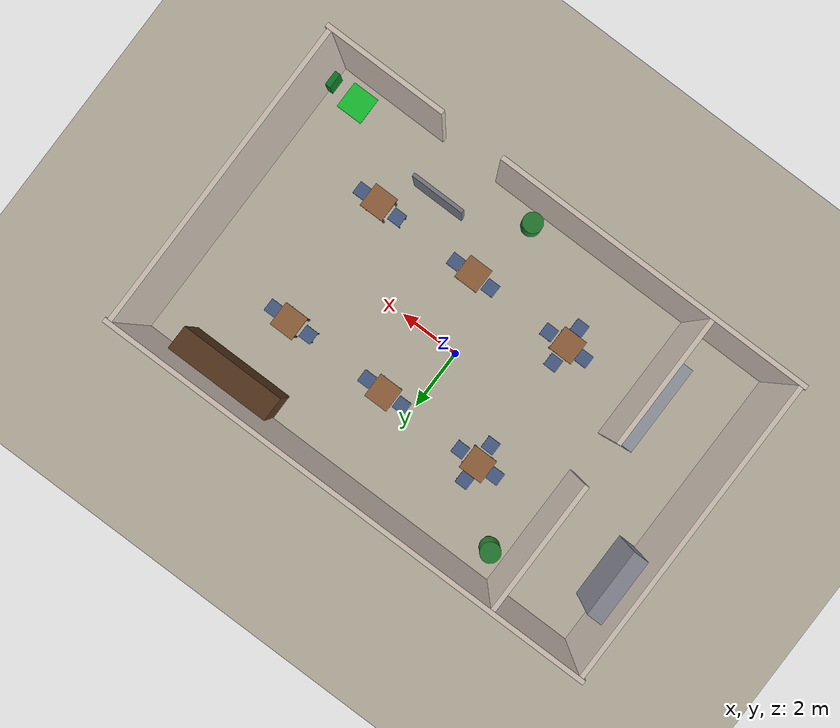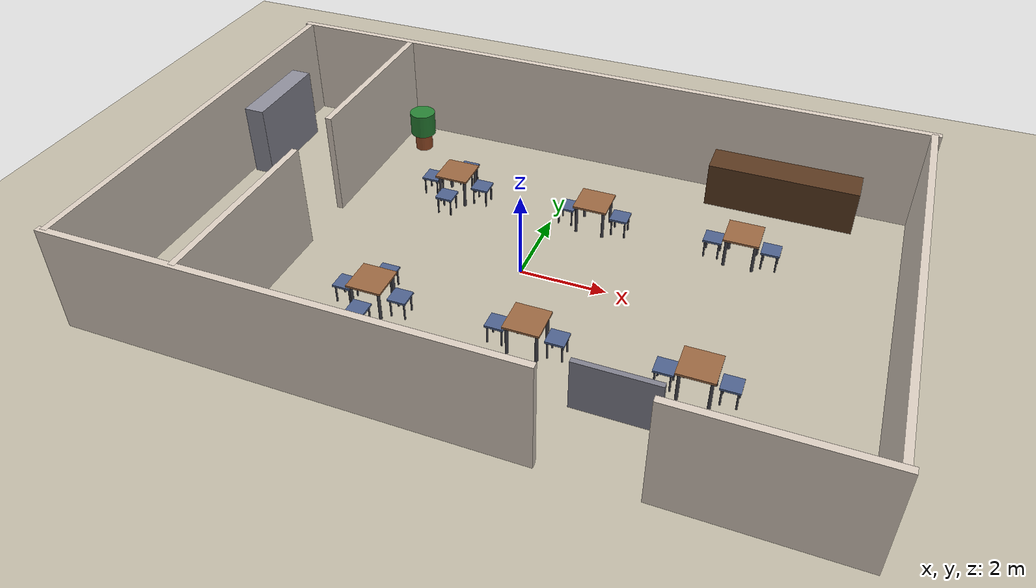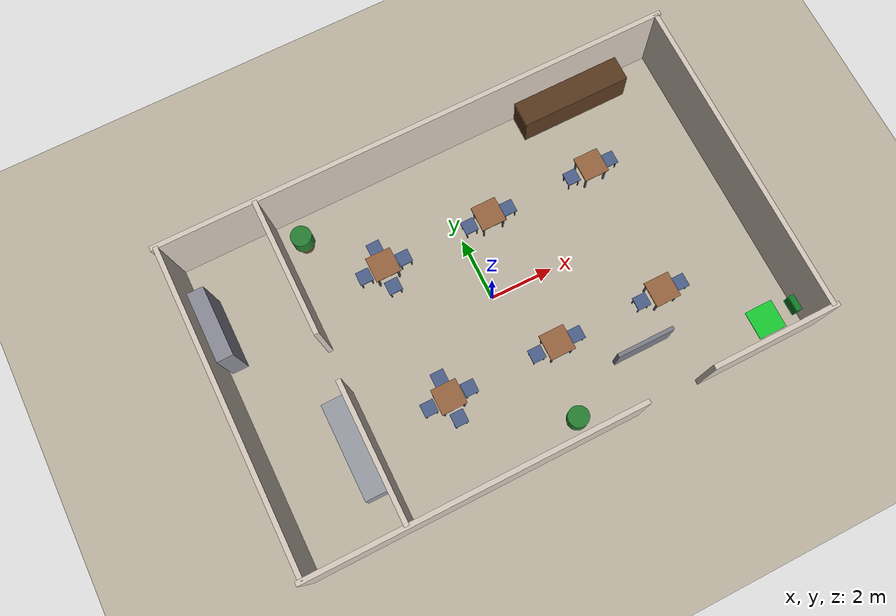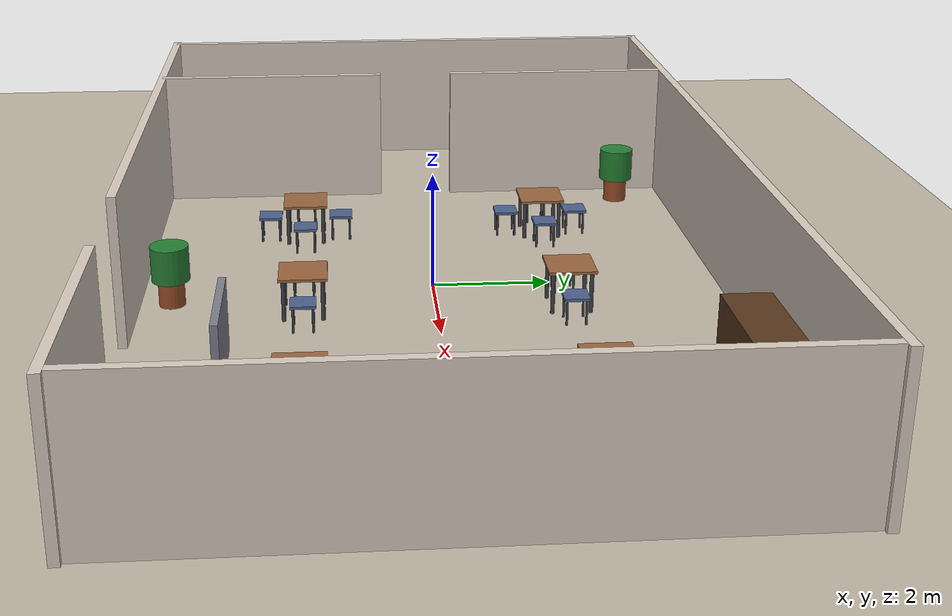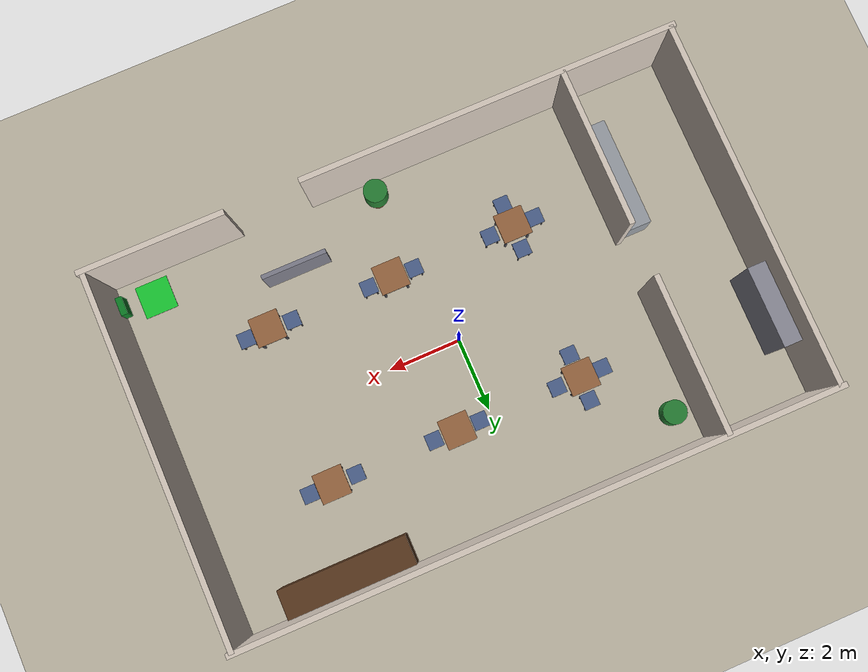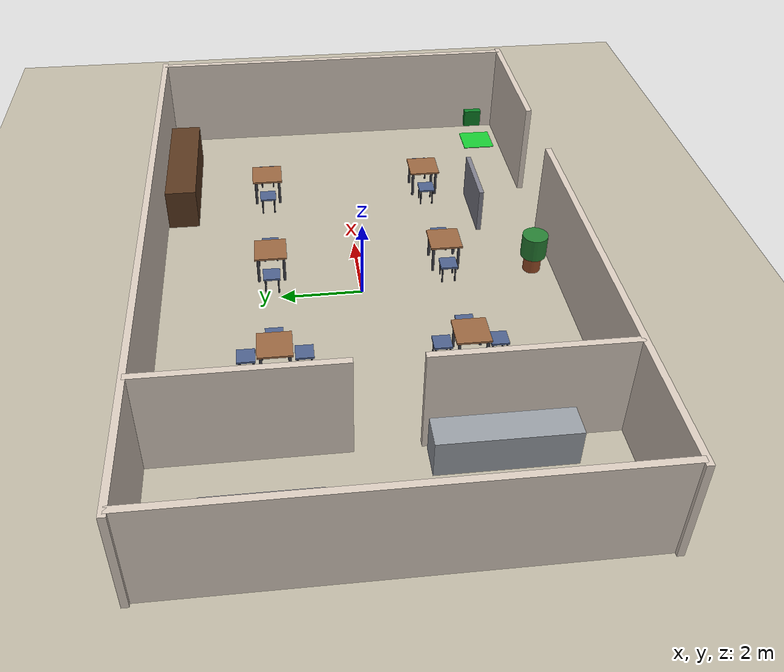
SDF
<?xml version="1.0"?>
<sdf version="1.8">
  <world name="restaurant">

    <physics name="1ms" type="ignored">
      <max_step_size>0.001</max_step_size>
      <real_time_factor>1.0</real_time_factor>
    </physics>

    <plugin filename="gz-sim-physics-system"
            name="gz::sim::systems::Physics"/>
    <plugin filename="gz-sim-user-commands-system"
            name="gz::sim::systems::UserCommands"/>
    <plugin filename="gz-sim-scene-broadcaster-system"
            name="gz::sim::systems::SceneBroadcaster"/>
    <plugin filename="gz-sim-sensors-system"
            name="gz::sim::systems::Sensors">
      <render_engine>ogre2</render_engine>
    </plugin>

    <!-- bright, evenly lit scene so the RGB-D camera sees well indoors -->
    <scene>
      <ambient>0.7 0.7 0.7 1</ambient>
      <background>0.6 0.75 0.85 1</background>
      <shadows>true</shadows>
    </scene>

    <light type="directional" name="sun">
      <cast_shadows>true</cast_shadows>
      <pose>0 0 10 0 0 0</pose>
      <diffuse>0.9 0.9 0.9 1</diffuse>
      <specular>0.2 0.2 0.2 1</specular>
      <direction>-0.3 0.2 -0.9</direction>
    </light>

    <model name="ground_plane">
      <static>true</static>
      <link name="link">
        <collision name="collision">
          <geometry>
            <plane><normal>0 0 1</normal><size>40 40</size></plane>
          </geometry>
        </collision>
        <visual name="visual">
          <geometry>
            <plane><normal>0 0 1</normal><size>40 40</size></plane>
          </geometry>
          <material>
            <ambient>0.75 0.72 0.65 1</ambient>
            <diffuse>0.75 0.72 0.65 1</diffuse>
          </material>
        </visual>
      </link>
    </model>

    <!-- building shell + kitchen divider wall (doorway 1.4 m wide) -->
    <model name="walls">
      <static>true</static>
      <link name="wall_north">
        <pose>0.0 5.0 1.25 0 0 0</pose>
        <collision name="wall_col"><pose>0 0 0 0 0 0</pose><geometry><box><size>16.3 0.15 2.5</size></box></geometry></collision>
        <visual name="wall_vis"><pose>0 0 0 0 0 0</pose><geometry><box><size>16.3 0.15 2.5</size></box></geometry><material><ambient>0.85 0.8 0.75 1</ambient><diffuse>0.85 0.8 0.75 1</diffuse></material></visual>
      </link>
      <link name="wall_south_west">
        <pose>-2.975 -5.0 1.25 0 0 0</pose>
        <collision name="wall_col"><pose>0 0 0 0 0 0</pose><geometry><box><size>10.35 0.15 2.5</size></box></geometry></collision>
        <visual name="wall_vis"><pose>0 0 0 0 0 0</pose><geometry><box><size>10.35 0.15 2.5</size></box></geometry><material><ambient>0.85 0.8 0.75 1</ambient><diffuse>0.85 0.8 0.75 1</diffuse></material></visual>
      </link>
      <link name="wall_south_east">
        <pose>6.175 -5.0 1.25 0 0 0</pose>
        <collision name="wall_col"><pose>0 0 0 0 0 0</pose><geometry><box><size>3.95 0.15 2.5</size></box></geometry></collision>
        <visual name="wall_vis"><pose>0 0 0 0 0 0</pose><geometry><box><size>3.95 0.15 2.5</size></box></geometry><material><ambient>0.85 0.8 0.75 1</ambient><diffuse>0.85 0.8 0.75 1</diffuse></material></visual>
      </link>
      <link name="wall_east">
        <pose>8.0 0.0 1.25 0 0 0</pose>
        <collision name="wall_col"><pose>0 0 0 0 0 0</pose><geometry><box><size>0.15 10.0 2.5</size></box></geometry></collision>
        <visual name="wall_vis"><pose>0 0 0 0 0 0</pose><geometry><box><size>0.15 10.0 2.5</size></box></geometry><material><ambient>0.85 0.8 0.75 1</ambient><diffuse>0.85 0.8 0.75 1</diffuse></material></visual>
      </link>
      <link name="wall_west">
        <pose>-8.0 0.0 1.25 0 0 0</pose>
        <collision name="wall_col"><pose>0 0 0 0 0 0</pose><geometry><box><size>0.15 10.0 2.5</size></box></geometry></collision>
        <visual name="wall_vis"><pose>0 0 0 0 0 0</pose><geometry><box><size>0.15 10.0 2.5</size></box></geometry><material><ambient>0.85 0.8 0.75 1</ambient><diffuse>0.85 0.8 0.75 1</diffuse></material></visual>
      </link>
      <link name="kitchen_wall_north">
        <pose>-5.0 2.85 1.25 0 0 0</pose>
        <collision name="wall_col"><pose>0 0 0 0 0 0</pose><geometry><box><size>0.15 4.3 2.5</size></box></geometry></collision>
        <visual name="wall_vis"><pose>0 0 0 0 0 0</pose><geometry><box><size>0.15 4.3 2.5</size></box></geometry><material><ambient>0.85 0.8 0.75 1</ambient><diffuse>0.85 0.8 0.75 1</diffuse></material></visual>
      </link>
      <link name="kitchen_wall_south">
        <pose>-5.0 -2.85 1.25 0 0 0</pose>
        <collision name="wall_col"><pose>0 0 0 0 0 0</pose><geometry><box><size>0.15 4.3 2.5</size></box></geometry></collision>
        <visual name="wall_vis"><pose>0 0 0 0 0 0</pose><geometry><box><size>0.15 4.3 2.5</size></box></geometry><material><ambient>0.85 0.8 0.75 1</ambient><diffuse>0.85 0.8 0.75 1</diffuse></material></visual>
      </link>
    </model>

    <!-- dining area: 6 tables on four cylinder legs each;
         tables 1 and 4 seat four, the rest seat two -->
    <model name="table_1">
      <static>true</static>
      <pose>-2.5 2.2 0 0 0 0</pose>
      <link name="table">
        <collision name="top_col"><pose>0 0 0.725 0 0 0</pose><geometry><box><size>0.8 0.8 0.05</size></box></geometry></collision>
        <visual name="top_vis"><pose>0 0 0.725 0 0 0</pose><geometry><box><size>0.8 0.8 0.05</size></box></geometry><material><ambient>0.6 0.4 0.25 1</ambient><diffuse>0.6 0.4 0.25 1</diffuse></material></visual>
        <collision name="leg_1_col"><pose>-0.32 -0.32 0.35 0 0 0</pose><geometry><cylinder><radius>0.035</radius><length>0.7</length></cylinder></geometry></collision>
        <visual name="leg_1_vis"><pose>-0.32 -0.32 0.35 0 0 0</pose><geometry><cylinder><radius>0.035</radius><length>0.7</length></cylinder></geometry><material><ambient>0.25 0.25 0.28 1</ambient><diffuse>0.25 0.25 0.28 1</diffuse></material></visual>
        <collision name="leg_2_col"><pose>-0.32 0.32 0.35 0 0 0</pose><geometry><cylinder><radius>0.035</radius><length>0.7</length></cylinder></geometry></collision>
        <visual name="leg_2_vis"><pose>-0.32 0.32 0.35 0 0 0</pose><geometry><cylinder><radius>0.035</radius><length>0.7</length></cylinder></geometry><material><ambient>0.25 0.25 0.28 1</ambient><diffuse>0.25 0.25 0.28 1</diffuse></material></visual>
        <collision name="leg_3_col"><pose>0.32 -0.32 0.35 0 0 0</pose><geometry><cylinder><radius>0.035</radius><length>0.7</length></cylinder></geometry></collision>
        <visual name="leg_3_vis"><pose>0.32 -0.32 0.35 0 0 0</pose><geometry><cylinder><radius>0.035</radius><length>0.7</length></cylinder></geometry><material><ambient>0.25 0.25 0.28 1</ambient><diffuse>0.25 0.25 0.28 1</diffuse></material></visual>
        <collision name="leg_4_col"><pose>0.32 0.32 0.35 0 0 0</pose><geometry><cylinder><radius>0.035</radius><length>0.7</length></cylinder></geometry></collision>
        <visual name="leg_4_vis"><pose>0.32 0.32 0.35 0 0 0</pose><geometry><cylinder><radius>0.035</radius><length>0.7</length></cylinder></geometry><material><ambient>0.25 0.25 0.28 1</ambient><diffuse>0.25 0.25 0.28 1</diffuse></material></visual>
      </link>
      <link name="chair_east">
        <pose>0.65 0 0 0 0 0</pose>
        <collision name="seat_col"><pose>0 0 0.45 0 0 0</pose><geometry><box><size>0.42 0.42 0.05</size></box></geometry></collision>
        <visual name="seat_vis"><pose>0 0 0.45 0 0 0</pose><geometry><box><size>0.42 0.42 0.05</size></box></geometry><material><ambient>0.3 0.38 0.55 1</ambient><diffuse>0.3 0.38 0.55 1</diffuse></material></visual>
        <collision name="leg_1_col"><pose>-0.16 -0.16 0.21 0 0 0</pose><geometry><cylinder><radius>0.02</radius><length>0.42</length></cylinder></geometry></collision>
        <visual name="leg_1_vis"><pose>-0.16 -0.16 0.21 0 0 0</pose><geometry><cylinder><radius>0.02</radius><length>0.42</length></cylinder></geometry><material><ambient>0.25 0.25 0.28 1</ambient><diffuse>0.25 0.25 0.28 1</diffuse></material></visual>
        <collision name="leg_2_col"><pose>-0.16 0.16 0.21 0 0 0</pose><geometry><cylinder><radius>0.02</radius><length>0.42</length></cylinder></geometry></collision>
        <visual name="leg_2_vis"><pose>-0.16 0.16 0.21 0 0 0</pose><geometry><cylinder><radius>0.02</radius><length>0.42</length></cylinder></geometry><material><ambient>0.25 0.25 0.28 1</ambient><diffuse>0.25 0.25 0.28 1</diffuse></material></visual>
        <collision name="leg_3_col"><pose>0.16 -0.16 0.21 0 0 0</pose><geometry><cylinder><radius>0.02</radius><length>0.42</length></cylinder></geometry></collision>
        <visual name="leg_3_vis"><pose>0.16 -0.16 0.21 0 0 0</pose><geometry><cylinder><radius>0.02</radius><length>0.42</length></cylinder></geometry><material><ambient>0.25 0.25 0.28 1</ambient><diffuse>0.25 0.25 0.28 1</diffuse></material></visual>
        <collision name="leg_4_col"><pose>0.16 0.16 0.21 0 0 0</pose><geometry><cylinder><radius>0.02</radius><length>0.42</length></cylinder></geometry></collision>
        <visual name="leg_4_vis"><pose>0.16 0.16 0.21 0 0 0</pose><geometry><cylinder><radius>0.02</radius><length>0.42</length></cylinder></geometry><material><ambient>0.25 0.25 0.28 1</ambient><diffuse>0.25 0.25 0.28 1</diffuse></material></visual>
      </link>
      <link name="chair_west">
        <pose>-0.65 0 0 0 0 0</pose>
        <collision name="seat_col"><pose>0 0 0.45 0 0 0</pose><geometry><box><size>0.42 0.42 0.05</size></box></geometry></collision>
        <visual name="seat_vis"><pose>0 0 0.45 0 0 0</pose><geometry><box><size>0.42 0.42 0.05</size></box></geometry><material><ambient>0.3 0.38 0.55 1</ambient><diffuse>0.3 0.38 0.55 1</diffuse></material></visual>
        <collision name="leg_1_col"><pose>-0.16 -0.16 0.21 0 0 0</pose><geometry><cylinder><radius>0.02</radius><length>0.42</length></cylinder></geometry></collision>
        <visual name="leg_1_vis"><pose>-0.16 -0.16 0.21 0 0 0</pose><geometry><cylinder><radius>0.02</radius><length>0.42</length></cylinder></geometry><material><ambient>0.25 0.25 0.28 1</ambient><diffuse>0.25 0.25 0.28 1</diffuse></material></visual>
        <collision name="leg_2_col"><pose>-0.16 0.16 0.21 0 0 0</pose><geometry><cylinder><radius>0.02</radius><length>0.42</length></cylinder></geometry></collision>
        <visual name="leg_2_vis"><pose>-0.16 0.16 0.21 0 0 0</pose><geometry><cylinder><radius>0.02</radius><length>0.42</length></cylinder></geometry><material><ambient>0.25 0.25 0.28 1</ambient><diffuse>0.25 0.25 0.28 1</diffuse></material></visual>
        <collision name="leg_3_col"><pose>0.16 -0.16 0.21 0 0 0</pose><geometry><cylinder><radius>0.02</radius><length>0.42</length></cylinder></geometry></collision>
        <visual name="leg_3_vis"><pose>0.16 -0.16 0.21 0 0 0</pose><geometry><cylinder><radius>0.02</radius><length>0.42</length></cylinder></geometry><material><ambient>0.25 0.25 0.28 1</ambient><diffuse>0.25 0.25 0.28 1</diffuse></material></visual>
        <collision name="leg_4_col"><pose>0.16 0.16 0.21 0 0 0</pose><geometry><cylinder><radius>0.02</radius><length>0.42</length></cylinder></geometry></collision>
        <visual name="leg_4_vis"><pose>0.16 0.16 0.21 0 0 0</pose><geometry><cylinder><radius>0.02</radius><length>0.42</length></cylinder></geometry><material><ambient>0.25 0.25 0.28 1</ambient><diffuse>0.25 0.25 0.28 1</diffuse></material></visual>
      </link>
      <link name="chair_north">
        <pose>0 0.65 0 0 0 0</pose>
        <collision name="seat_col"><pose>0 0 0.45 0 0 0</pose><geometry><box><size>0.42 0.42 0.05</size></box></geometry></collision>
        <visual name="seat_vis"><pose>0 0 0.45 0 0 0</pose><geometry><box><size>0.42 0.42 0.05</size></box></geometry><material><ambient>0.3 0.38 0.55 1</ambient><diffuse>0.3 0.38 0.55 1</diffuse></material></visual>
        <collision name="leg_1_col"><pose>-0.16 -0.16 0.21 0 0 0</pose><geometry><cylinder><radius>0.02</radius><length>0.42</length></cylinder></geometry></collision>
        <visual name="leg_1_vis"><pose>-0.16 -0.16 0.21 0 0 0</pose><geometry><cylinder><radius>0.02</radius><length>0.42</length></cylinder></geometry><material><ambient>0.25 0.25 0.28 1</ambient><diffuse>0.25 0.25 0.28 1</diffuse></material></visual>
        <collision name="leg_2_col"><pose>-0.16 0.16 0.21 0 0 0</pose><geometry><cylinder><radius>0.02</radius><length>0.42</length></cylinder></geometry></collision>
        <visual name="leg_2_vis"><pose>-0.16 0.16 0.21 0 0 0</pose><geometry><cylinder><radius>0.02</radius><length>0.42</length></cylinder></geometry><material><ambient>0.25 0.25 0.28 1</ambient><diffuse>0.25 0.25 0.28 1</diffuse></material></visual>
        <collision name="leg_3_col"><pose>0.16 -0.16 0.21 0 0 0</pose><geometry><cylinder><radius>0.02</radius><length>0.42</length></cylinder></geometry></collision>
        <visual name="leg_3_vis"><pose>0.16 -0.16 0.21 0 0 0</pose><geometry><cylinder><radius>0.02</radius><length>0.42</length></cylinder></geometry><material><ambient>0.25 0.25 0.28 1</ambient><diffuse>0.25 0.25 0.28 1</diffuse></material></visual>
        <collision name="leg_4_col"><pose>0.16 0.16 0.21 0 0 0</pose><geometry><cylinder><radius>0.02</radius><length>0.42</length></cylinder></geometry></collision>
        <visual name="leg_4_vis"><pose>0.16 0.16 0.21 0 0 0</pose><geometry><cylinder><radius>0.02</radius><length>0.42</length></cylinder></geometry><material><ambient>0.25 0.25 0.28 1</ambient><diffuse>0.25 0.25 0.28 1</diffuse></material></visual>
      </link>
      <link name="chair_south">
        <pose>0 -0.65 0 0 0 0</pose>
        <collision name="seat_col"><pose>0 0 0.45 0 0 0</pose><geometry><box><size>0.42 0.42 0.05</size></box></geometry></collision>
        <visual name="seat_vis"><pose>0 0 0.45 0 0 0</pose><geometry><box><size>0.42 0.42 0.05</size></box></geometry><material><ambient>0.3 0.38 0.55 1</ambient><diffuse>0.3 0.38 0.55 1</diffuse></material></visual>
        <collision name="leg_1_col"><pose>-0.16 -0.16 0.21 0 0 0</pose><geometry><cylinder><radius>0.02</radius><length>0.42</length></cylinder></geometry></collision>
        <visual name="leg_1_vis"><pose>-0.16 -0.16 0.21 0 0 0</pose><geometry><cylinder><radius>0.02</radius><length>0.42</length></cylinder></geometry><material><ambient>0.25 0.25 0.28 1</ambient><diffuse>0.25 0.25 0.28 1</diffuse></material></visual>
        <collision name="leg_2_col"><pose>-0.16 0.16 0.21 0 0 0</pose><geometry><cylinder><radius>0.02</radius><length>0.42</length></cylinder></geometry></collision>
        <visual name="leg_2_vis"><pose>-0.16 0.16 0.21 0 0 0</pose><geometry><cylinder><radius>0.02</radius><length>0.42</length></cylinder></geometry><material><ambient>0.25 0.25 0.28 1</ambient><diffuse>0.25 0.25 0.28 1</diffuse></material></visual>
        <collision name="leg_3_col"><pose>0.16 -0.16 0.21 0 0 0</pose><geometry><cylinder><radius>0.02</radius><length>0.42</length></cylinder></geometry></collision>
        <visual name="leg_3_vis"><pose>0.16 -0.16 0.21 0 0 0</pose><geometry><cylinder><radius>0.02</radius><length>0.42</length></cylinder></geometry><material><ambient>0.25 0.25 0.28 1</ambient><diffuse>0.25 0.25 0.28 1</diffuse></material></visual>
        <collision name="leg_4_col"><pose>0.16 0.16 0.21 0 0 0</pose><geometry><cylinder><radius>0.02</radius><length>0.42</length></cylinder></geometry></collision>
        <visual name="leg_4_vis"><pose>0.16 0.16 0.21 0 0 0</pose><geometry><cylinder><radius>0.02</radius><length>0.42</length></cylinder></geometry><material><ambient>0.25 0.25 0.28 1</ambient><diffuse>0.25 0.25 0.28 1</diffuse></material></visual>
      </link>
    </model>

    <model name="table_2">
      <static>true</static>
      <pose>1.0 2.2 0 0 0 0</pose>
      <link name="table">
        <collision name="top_col"><pose>0 0 0.725 0 0 0</pose><geometry><box><size>0.8 0.8 0.05</size></box></geometry></collision>
        <visual name="top_vis"><pose>0 0 0.725 0 0 0</pose><geometry><box><size>0.8 0.8 0.05</size></box></geometry><material><ambient>0.6 0.4 0.25 1</ambient><diffuse>0.6 0.4 0.25 1</diffuse></material></visual>
        <collision name="leg_1_col"><pose>-0.32 -0.32 0.35 0 0 0</pose><geometry><cylinder><radius>0.035</radius><length>0.7</length></cylinder></geometry></collision>
        <visual name="leg_1_vis"><pose>-0.32 -0.32 0.35 0 0 0</pose><geometry><cylinder><radius>0.035</radius><length>0.7</length></cylinder></geometry><material><ambient>0.25 0.25 0.28 1</ambient><diffuse>0.25 0.25 0.28 1</diffuse></material></visual>
        <collision name="leg_2_col"><pose>-0.32 0.32 0.35 0 0 0</pose><geometry><cylinder><radius>0.035</radius><length>0.7</length></cylinder></geometry></collision>
        <visual name="leg_2_vis"><pose>-0.32 0.32 0.35 0 0 0</pose><geometry><cylinder><radius>0.035</radius><length>0.7</length></cylinder></geometry><material><ambient>0.25 0.25 0.28 1</ambient><diffuse>0.25 0.25 0.28 1</diffuse></material></visual>
        <collision name="leg_3_col"><pose>0.32 -0.32 0.35 0 0 0</pose><geometry><cylinder><radius>0.035</radius><length>0.7</length></cylinder></geometry></collision>
        <visual name="leg_3_vis"><pose>0.32 -0.32 0.35 0 0 0</pose><geometry><cylinder><radius>0.035</radius><length>0.7</length></cylinder></geometry><material><ambient>0.25 0.25 0.28 1</ambient><diffuse>0.25 0.25 0.28 1</diffuse></material></visual>
        <collision name="leg_4_col"><pose>0.32 0.32 0.35 0 0 0</pose><geometry><cylinder><radius>0.035</radius><length>0.7</length></cylinder></geometry></collision>
        <visual name="leg_4_vis"><pose>0.32 0.32 0.35 0 0 0</pose><geometry><cylinder><radius>0.035</radius><length>0.7</length></cylinder></geometry><material><ambient>0.25 0.25 0.28 1</ambient><diffuse>0.25 0.25 0.28 1</diffuse></material></visual>
      </link>
      <link name="chair_east">
        <pose>0.65 0 0 0 0 0</pose>
        <collision name="seat_col"><pose>0 0 0.45 0 0 0</pose><geometry><box><size>0.42 0.42 0.05</size></box></geometry></collision>
        <visual name="seat_vis"><pose>0 0 0.45 0 0 0</pose><geometry><box><size>0.42 0.42 0.05</size></box></geometry><material><ambient>0.3 0.38 0.55 1</ambient><diffuse>0.3 0.38 0.55 1</diffuse></material></visual>
        <collision name="leg_1_col"><pose>-0.16 -0.16 0.21 0 0 0</pose><geometry><cylinder><radius>0.02</radius><length>0.42</length></cylinder></geometry></collision>
        <visual name="leg_1_vis"><pose>-0.16 -0.16 0.21 0 0 0</pose><geometry><cylinder><radius>0.02</radius><length>0.42</length></cylinder></geometry><material><ambient>0.25 0.25 0.28 1</ambient><diffuse>0.25 0.25 0.28 1</diffuse></material></visual>
        <collision name="leg_2_col"><pose>-0.16 0.16 0.21 0 0 0</pose><geometry><cylinder><radius>0.02</radius><length>0.42</length></cylinder></geometry></collision>
        <visual name="leg_2_vis"><pose>-0.16 0.16 0.21 0 0 0</pose><geometry><cylinder><radius>0.02</radius><length>0.42</length></cylinder></geometry><material><ambient>0.25 0.25 0.28 1</ambient><diffuse>0.25 0.25 0.28 1</diffuse></material></visual>
        <collision name="leg_3_col"><pose>0.16 -0.16 0.21 0 0 0</pose><geometry><cylinder><radius>0.02</radius><length>0.42</length></cylinder></geometry></collision>
        <visual name="leg_3_vis"><pose>0.16 -0.16 0.21 0 0 0</pose><geometry><cylinder><radius>0.02</radius><length>0.42</length></cylinder></geometry><material><ambient>0.25 0.25 0.28 1</ambient><diffuse>0.25 0.25 0.28 1</diffuse></material></visual>
        <collision name="leg_4_col"><pose>0.16 0.16 0.21 0 0 0</pose><geometry><cylinder><radius>0.02</radius><length>0.42</length></cylinder></geometry></collision>
        <visual name="leg_4_vis"><pose>0.16 0.16 0.21 0 0 0</pose><geometry><cylinder><radius>0.02</radius><length>0.42</length></cylinder></geometry><material><ambient>0.25 0.25 0.28 1</ambient><diffuse>0.25 0.25 0.28 1</diffuse></material></visual>
      </link>
      <link name="chair_west">
        <pose>-0.65 0 0 0 0 0</pose>
        <collision name="seat_col"><pose>0 0 0.45 0 0 0</pose><geometry><box><size>0.42 0.42 0.05</size></box></geometry></collision>
        <visual name="seat_vis"><pose>0 0 0.45 0 0 0</pose><geometry><box><size>0.42 0.42 0.05</size></box></geometry><material><ambient>0.3 0.38 0.55 1</ambient><diffuse>0.3 0.38 0.55 1</diffuse></material></visual>
        <collision name="leg_1_col"><pose>-0.16 -0.16 0.21 0 0 0</pose><geometry><cylinder><radius>0.02</radius><length>0.42</length></cylinder></geometry></collision>
        <visual name="leg_1_vis"><pose>-0.16 -0.16 0.21 0 0 0</pose><geometry><cylinder><radius>0.02</radius><length>0.42</length></cylinder></geometry><material><ambient>0.25 0.25 0.28 1</ambient><diffuse>0.25 0.25 0.28 1</diffuse></material></visual>
        <collision name="leg_2_col"><pose>-0.16 0.16 0.21 0 0 0</pose><geometry><cylinder><radius>0.02</radius><length>0.42</length></cylinder></geometry></collision>
        <visual name="leg_2_vis"><pose>-0.16 0.16 0.21 0 0 0</pose><geometry><cylinder><radius>0.02</radius><length>0.42</length></cylinder></geometry><material><ambient>0.25 0.25 0.28 1</ambient><diffuse>0.25 0.25 0.28 1</diffuse></material></visual>
        <collision name="leg_3_col"><pose>0.16 -0.16 0.21 0 0 0</pose><geometry><cylinder><radius>0.02</radius><length>0.42</length></cylinder></geometry></collision>
        <visual name="leg_3_vis"><pose>0.16 -0.16 0.21 0 0 0</pose><geometry><cylinder><radius>0.02</radius><length>0.42</length></cylinder></geometry><material><ambient>0.25 0.25 0.28 1</ambient><diffuse>0.25 0.25 0.28 1</diffuse></material></visual>
        <collision name="leg_4_col"><pose>0.16 0.16 0.21 0 0 0</pose><geometry><cylinder><radius>0.02</radius><length>0.42</length></cylinder></geometry></collision>
        <visual name="leg_4_vis"><pose>0.16 0.16 0.21 0 0 0</pose><geometry><cylinder><radius>0.02</radius><length>0.42</length></cylinder></geometry><material><ambient>0.25 0.25 0.28 1</ambient><diffuse>0.25 0.25 0.28 1</diffuse></material></visual>
      </link>
    </model>

    <model name="table_3">
      <static>true</static>
      <pose>4.5 2.2 0 0 0 0</pose>
      <link name="table">
        <collision name="top_col"><pose>0 0 0.725 0 0 0</pose><geometry><box><size>0.8 0.8 0.05</size></box></geometry></collision>
        <visual name="top_vis"><pose>0 0 0.725 0 0 0</pose><geometry><box><size>0.8 0.8 0.05</size></box></geometry><material><ambient>0.6 0.4 0.25 1</ambient><diffuse>0.6 0.4 0.25 1</diffuse></material></visual>
        <collision name="leg_1_col"><pose>-0.32 -0.32 0.35 0 0 0</pose><geometry><cylinder><radius>0.035</radius><length>0.7</length></cylinder></geometry></collision>
        <visual name="leg_1_vis"><pose>-0.32 -0.32 0.35 0 0 0</pose><geometry><cylinder><radius>0.035</radius><length>0.7</length></cylinder></geometry><material><ambient>0.25 0.25 0.28 1</ambient><diffuse>0.25 0.25 0.28 1</diffuse></material></visual>
        <collision name="leg_2_col"><pose>-0.32 0.32 0.35 0 0 0</pose><geometry><cylinder><radius>0.035</radius><length>0.7</length></cylinder></geometry></collision>
        <visual name="leg_2_vis"><pose>-0.32 0.32 0.35 0 0 0</pose><geometry><cylinder><radius>0.035</radius><length>0.7</length></cylinder></geometry><material><ambient>0.25 0.25 0.28 1</ambient><diffuse>0.25 0.25 0.28 1</diffuse></material></visual>
        <collision name="leg_3_col"><pose>0.32 -0.32 0.35 0 0 0</pose><geometry><cylinder><radius>0.035</radius><length>0.7</length></cylinder></geometry></collision>
        <visual name="leg_3_vis"><pose>0.32 -0.32 0.35 0 0 0</pose><geometry><cylinder><radius>0.035</radius><length>0.7</length></cylinder></geometry><material><ambient>0.25 0.25 0.28 1</ambient><diffuse>0.25 0.25 0.28 1</diffuse></material></visual>
        <collision name="leg_4_col"><pose>0.32 0.32 0.35 0 0 0</pose><geometry><cylinder><radius>0.035</radius><length>0.7</length></cylinder></geometry></collision>
        <visual name="leg_4_vis"><pose>0.32 0.32 0.35 0 0 0</pose><geometry><cylinder><radius>0.035</radius><length>0.7</length></cylinder></geometry><material><ambient>0.25 0.25 0.28 1</ambient><diffuse>0.25 0.25 0.28 1</diffuse></material></visual>
      </link>
      <link name="chair_east">
        <pose>0.65 0 0 0 0 0</pose>
        <collision name="seat_col"><pose>0 0 0.45 0 0 0</pose><geometry><box><size>0.42 0.42 0.05</size></box></geometry></collision>
        <visual name="seat_vis"><pose>0 0 0.45 0 0 0</pose><geometry><box><size>0.42 0.42 0.05</size></box></geometry><material><ambient>0.3 0.38 0.55 1</ambient><diffuse>0.3 0.38 0.55 1</diffuse></material></visual>
        <collision name="leg_1_col"><pose>-0.16 -0.16 0.21 0 0 0</pose><geometry><cylinder><radius>0.02</radius><length>0.42</length></cylinder></geometry></collision>
        <visual name="leg_1_vis"><pose>-0.16 -0.16 0.21 0 0 0</pose><geometry><cylinder><radius>0.02</radius><length>0.42</length></cylinder></geometry><material><ambient>0.25 0.25 0.28 1</ambient><diffuse>0.25 0.25 0.28 1</diffuse></material></visual>
        <collision name="leg_2_col"><pose>-0.16 0.16 0.21 0 0 0</pose><geometry><cylinder><radius>0.02</radius><length>0.42</length></cylinder></geometry></collision>
        <visual name="leg_2_vis"><pose>-0.16 0.16 0.21 0 0 0</pose><geometry><cylinder><radius>0.02</radius><length>0.42</length></cylinder></geometry><material><ambient>0.25 0.25 0.28 1</ambient><diffuse>0.25 0.25 0.28 1</diffuse></material></visual>
        <collision name="leg_3_col"><pose>0.16 -0.16 0.21 0 0 0</pose><geometry><cylinder><radius>0.02</radius><length>0.42</length></cylinder></geometry></collision>
        <visual name="leg_3_vis"><pose>0.16 -0.16 0.21 0 0 0</pose><geometry><cylinder><radius>0.02</radius><length>0.42</length></cylinder></geometry><material><ambient>0.25 0.25 0.28 1</ambient><diffuse>0.25 0.25 0.28 1</diffuse></material></visual>
        <collision name="leg_4_col"><pose>0.16 0.16 0.21 0 0 0</pose><geometry><cylinder><radius>0.02</radius><length>0.42</length></cylinder></geometry></collision>
        <visual name="leg_4_vis"><pose>0.16 0.16 0.21 0 0 0</pose><geometry><cylinder><radius>0.02</radius><length>0.42</length></cylinder></geometry><material><ambient>0.25 0.25 0.28 1</ambient><diffuse>0.25 0.25 0.28 1</diffuse></material></visual>
      </link>
      <link name="chair_west">
        <pose>-0.65 0 0 0 0 0</pose>
        <collision name="seat_col"><pose>0 0 0.45 0 0 0</pose><geometry><box><size>0.42 0.42 0.05</size></box></geometry></collision>
        <visual name="seat_vis"><pose>0 0 0.45 0 0 0</pose><geometry><box><size>0.42 0.42 0.05</size></box></geometry><material><ambient>0.3 0.38 0.55 1</ambient><diffuse>0.3 0.38 0.55 1</diffuse></material></visual>
        <collision name="leg_1_col"><pose>-0.16 -0.16 0.21 0 0 0</pose><geometry><cylinder><radius>0.02</radius><length>0.42</length></cylinder></geometry></collision>
        <visual name="leg_1_vis"><pose>-0.16 -0.16 0.21 0 0 0</pose><geometry><cylinder><radius>0.02</radius><length>0.42</length></cylinder></geometry><material><ambient>0.25 0.25 0.28 1</ambient><diffuse>0.25 0.25 0.28 1</diffuse></material></visual>
        <collision name="leg_2_col"><pose>-0.16 0.16 0.21 0 0 0</pose><geometry><cylinder><radius>0.02</radius><length>0.42</length></cylinder></geometry></collision>
        <visual name="leg_2_vis"><pose>-0.16 0.16 0.21 0 0 0</pose><geometry><cylinder><radius>0.02</radius><length>0.42</length></cylinder></geometry><material><ambient>0.25 0.25 0.28 1</ambient><diffuse>0.25 0.25 0.28 1</diffuse></material></visual>
        <collision name="leg_3_col"><pose>0.16 -0.16 0.21 0 0 0</pose><geometry><cylinder><radius>0.02</radius><length>0.42</length></cylinder></geometry></collision>
        <visual name="leg_3_vis"><pose>0.16 -0.16 0.21 0 0 0</pose><geometry><cylinder><radius>0.02</radius><length>0.42</length></cylinder></geometry><material><ambient>0.25 0.25 0.28 1</ambient><diffuse>0.25 0.25 0.28 1</diffuse></material></visual>
        <collision name="leg_4_col"><pose>0.16 0.16 0.21 0 0 0</pose><geometry><cylinder><radius>0.02</radius><length>0.42</length></cylinder></geometry></collision>
        <visual name="leg_4_vis"><pose>0.16 0.16 0.21 0 0 0</pose><geometry><cylinder><radius>0.02</radius><length>0.42</length></cylinder></geometry><material><ambient>0.25 0.25 0.28 1</ambient><diffuse>0.25 0.25 0.28 1</diffuse></material></visual>
      </link>
    </model>

    <model name="table_4">
      <static>true</static>
      <pose>-2.5 -2.2 0 0 0 0</pose>
      <link name="table">
        <collision name="top_col"><pose>0 0 0.725 0 0 0</pose><geometry><box><size>0.8 0.8 0.05</size></box></geometry></collision>
        <visual name="top_vis"><pose>0 0 0.725 0 0 0</pose><geometry><box><size>0.8 0.8 0.05</size></box></geometry><material><ambient>0.6 0.4 0.25 1</ambient><diffuse>0.6 0.4 0.25 1</diffuse></material></visual>
        <collision name="leg_1_col"><pose>-0.32 -0.32 0.35 0 0 0</pose><geometry><cylinder><radius>0.035</radius><length>0.7</length></cylinder></geometry></collision>
        <visual name="leg_1_vis"><pose>-0.32 -0.32 0.35 0 0 0</pose><geometry><cylinder><radius>0.035</radius><length>0.7</length></cylinder></geometry><material><ambient>0.25 0.25 0.28 1</ambient><diffuse>0.25 0.25 0.28 1</diffuse></material></visual>
        <collision name="leg_2_col"><pose>-0.32 0.32 0.35 0 0 0</pose><geometry><cylinder><radius>0.035</radius><length>0.7</length></cylinder></geometry></collision>
        <visual name="leg_2_vis"><pose>-0.32 0.32 0.35 0 0 0</pose><geometry><cylinder><radius>0.035</radius><length>0.7</length></cylinder></geometry><material><ambient>0.25 0.25 0.28 1</ambient><diffuse>0.25 0.25 0.28 1</diffuse></material></visual>
        <collision name="leg_3_col"><pose>0.32 -0.32 0.35 0 0 0</pose><geometry><cylinder><radius>0.035</radius><length>0.7</length></cylinder></geometry></collision>
        <visual name="leg_3_vis"><pose>0.32 -0.32 0.35 0 0 0</pose><geometry><cylinder><radius>0.035</radius><length>0.7</length></cylinder></geometry><material><ambient>0.25 0.25 0.28 1</ambient><diffuse>0.25 0.25 0.28 1</diffuse></material></visual>
        <collision name="leg_4_col"><pose>0.32 0.32 0.35 0 0 0</pose><geometry><cylinder><radius>0.035</radius><length>0.7</length></cylinder></geometry></collision>
        <visual name="leg_4_vis"><pose>0.32 0.32 0.35 0 0 0</pose><geometry><cylinder><radius>0.035</radius><length>0.7</length></cylinder></geometry><material><ambient>0.25 0.25 0.28 1</ambient><diffuse>0.25 0.25 0.28 1</diffuse></material></visual>
      </link>
      <link name="chair_east">
        <pose>0.65 0 0 0 0 0</pose>
        <collision name="seat_col"><pose>0 0 0.45 0 0 0</pose><geometry><box><size>0.42 0.42 0.05</size></box></geometry></collision>
        <visual name="seat_vis"><pose>0 0 0.45 0 0 0</pose><geometry><box><size>0.42 0.42 0.05</size></box></geometry><material><ambient>0.3 0.38 0.55 1</ambient><diffuse>0.3 0.38 0.55 1</diffuse></material></visual>
        <collision name="leg_1_col"><pose>-0.16 -0.16 0.21 0 0 0</pose><geometry><cylinder><radius>0.02</radius><length>0.42</length></cylinder></geometry></collision>
        <visual name="leg_1_vis"><pose>-0.16 -0.16 0.21 0 0 0</pose><geometry><cylinder><radius>0.02</radius><length>0.42</length></cylinder></geometry><material><ambient>0.25 0.25 0.28 1</ambient><diffuse>0.25 0.25 0.28 1</diffuse></material></visual>
        <collision name="leg_2_col"><pose>-0.16 0.16 0.21 0 0 0</pose><geometry><cylinder><radius>0.02</radius><length>0.42</length></cylinder></geometry></collision>
        <visual name="leg_2_vis"><pose>-0.16 0.16 0.21 0 0 0</pose><geometry><cylinder><radius>0.02</radius><length>0.42</length></cylinder></geometry><material><ambient>0.25 0.25 0.28 1</ambient><diffuse>0.25 0.25 0.28 1</diffuse></material></visual>
        <collision name="leg_3_col"><pose>0.16 -0.16 0.21 0 0 0</pose><geometry><cylinder><radius>0.02</radius><length>0.42</length></cylinder></geometry></collision>
        <visual name="leg_3_vis"><pose>0.16 -0.16 0.21 0 0 0</pose><geometry><cylinder><radius>0.02</radius><length>0.42</length></cylinder></geometry><material><ambient>0.25 0.25 0.28 1</ambient><diffuse>0.25 0.25 0.28 1</diffuse></material></visual>
        <collision name="leg_4_col"><pose>0.16 0.16 0.21 0 0 0</pose><geometry><cylinder><radius>0.02</radius><length>0.42</length></cylinder></geometry></collision>
        <visual name="leg_4_vis"><pose>0.16 0.16 0.21 0 0 0</pose><geometry><cylinder><radius>0.02</radius><length>0.42</length></cylinder></geometry><material><ambient>0.25 0.25 0.28 1</ambient><diffuse>0.25 0.25 0.28 1</diffuse></material></visual>
      </link>
      <link name="chair_west">
        <pose>-0.65 0 0 0 0 0</pose>
        <collision name="seat_col"><pose>0 0 0.45 0 0 0</pose><geometry><box><size>0.42 0.42 0.05</size></box></geometry></collision>
        <visual name="seat_vis"><pose>0 0 0.45 0 0 0</pose><geometry><box><size>0.42 0.42 0.05</size></box></geometry><material><ambient>0.3 0.38 0.55 1</ambient><diffuse>0.3 0.38 0.55 1</diffuse></material></visual>
        <collision name="leg_1_col"><pose>-0.16 -0.16 0.21 0 0 0</pose><geometry><cylinder><radius>0.02</radius><length>0.42</length></cylinder></geometry></collision>
        <visual name="leg_1_vis"><pose>-0.16 -0.16 0.21 0 0 0</pose><geometry><cylinder><radius>0.02</radius><length>0.42</length></cylinder></geometry><material><ambient>0.25 0.25 0.28 1</ambient><diffuse>0.25 0.25 0.28 1</diffuse></material></visual>
        <collision name="leg_2_col"><pose>-0.16 0.16 0.21 0 0 0</pose><geometry><cylinder><radius>0.02</radius><length>0.42</length></cylinder></geometry></collision>
        <visual name="leg_2_vis"><pose>-0.16 0.16 0.21 0 0 0</pose><geometry><cylinder><radius>0.02</radius><length>0.42</length></cylinder></geometry><material><ambient>0.25 0.25 0.28 1</ambient><diffuse>0.25 0.25 0.28 1</diffuse></material></visual>
        <collision name="leg_3_col"><pose>0.16 -0.16 0.21 0 0 0</pose><geometry><cylinder><radius>0.02</radius><length>0.42</length></cylinder></geometry></collision>
        <visual name="leg_3_vis"><pose>0.16 -0.16 0.21 0 0 0</pose><geometry><cylinder><radius>0.02</radius><length>0.42</length></cylinder></geometry><material><ambient>0.25 0.25 0.28 1</ambient><diffuse>0.25 0.25 0.28 1</diffuse></material></visual>
        <collision name="leg_4_col"><pose>0.16 0.16 0.21 0 0 0</pose><geometry><cylinder><radius>0.02</radius><length>0.42</length></cylinder></geometry></collision>
        <visual name="leg_4_vis"><pose>0.16 0.16 0.21 0 0 0</pose><geometry><cylinder><radius>0.02</radius><length>0.42</length></cylinder></geometry><material><ambient>0.25 0.25 0.28 1</ambient><diffuse>0.25 0.25 0.28 1</diffuse></material></visual>
      </link>
      <link name="chair_north">
        <pose>0 0.65 0 0 0 0</pose>
        <collision name="seat_col"><pose>0 0 0.45 0 0 0</pose><geometry><box><size>0.42 0.42 0.05</size></box></geometry></collision>
        <visual name="seat_vis"><pose>0 0 0.45 0 0 0</pose><geometry><box><size>0.42 0.42 0.05</size></box></geometry><material><ambient>0.3 0.38 0.55 1</ambient><diffuse>0.3 0.38 0.55 1</diffuse></material></visual>
        <collision name="leg_1_col"><pose>-0.16 -0.16 0.21 0 0 0</pose><geometry><cylinder><radius>0.02</radius><length>0.42</length></cylinder></geometry></collision>
        <visual name="leg_1_vis"><pose>-0.16 -0.16 0.21 0 0 0</pose><geometry><cylinder><radius>0.02</radius><length>0.42</length></cylinder></geometry><material><ambient>0.25 0.25 0.28 1</ambient><diffuse>0.25 0.25 0.28 1</diffuse></material></visual>
        <collision name="leg_2_col"><pose>-0.16 0.16 0.21 0 0 0</pose><geometry><cylinder><radius>0.02</radius><length>0.42</length></cylinder></geometry></collision>
        <visual name="leg_2_vis"><pose>-0.16 0.16 0.21 0 0 0</pose><geometry><cylinder><radius>0.02</radius><length>0.42</length></cylinder></geometry><material><ambient>0.25 0.25 0.28 1</ambient><diffuse>0.25 0.25 0.28 1</diffuse></material></visual>
        <collision name="leg_3_col"><pose>0.16 -0.16 0.21 0 0 0</pose><geometry><cylinder><radius>0.02</radius><length>0.42</length></cylinder></geometry></collision>
        <visual name="leg_3_vis"><pose>0.16 -0.16 0.21 0 0 0</pose><geometry><cylinder><radius>0.02</radius><length>0.42</length></cylinder></geometry><material><ambient>0.25 0.25 0.28 1</ambient><diffuse>0.25 0.25 0.28 1</diffuse></material></visual>
        <collision name="leg_4_col"><pose>0.16 0.16 0.21 0 0 0</pose><geometry><cylinder><radius>0.02</radius><length>0.42</length></cylinder></geometry></collision>
        <visual name="leg_4_vis"><pose>0.16 0.16 0.21 0 0 0</pose><geometry><cylinder><radius>0.02</radius><length>0.42</length></cylinder></geometry><material><ambient>0.25 0.25 0.28 1</ambient><diffuse>0.25 0.25 0.28 1</diffuse></material></visual>
      </link>
      <link name="chair_south">
        <pose>0 -0.65 0 0 0 0</pose>
        <collision name="seat_col"><pose>0 0 0.45 0 0 0</pose><geometry><box><size>0.42 0.42 0.05</size></box></geometry></collision>
        <visual name="seat_vis"><pose>0 0 0.45 0 0 0</pose><geometry><box><size>0.42 0.42 0.05</size></box></geometry><material><ambient>0.3 0.38 0.55 1</ambient><diffuse>0.3 0.38 0.55 1</diffuse></material></visual>
        <collision name="leg_1_col"><pose>-0.16 -0.16 0.21 0 0 0</pose><geometry><cylinder><radius>0.02</radius><length>0.42</length></cylinder></geometry></collision>
        <visual name="leg_1_vis"><pose>-0.16 -0.16 0.21 0 0 0</pose><geometry><cylinder><radius>0.02</radius><length>0.42</length></cylinder></geometry><material><ambient>0.25 0.25 0.28 1</ambient><diffuse>0.25 0.25 0.28 1</diffuse></material></visual>
        <collision name="leg_2_col"><pose>-0.16 0.16 0.21 0 0 0</pose><geometry><cylinder><radius>0.02</radius><length>0.42</length></cylinder></geometry></collision>
        <visual name="leg_2_vis"><pose>-0.16 0.16 0.21 0 0 0</pose><geometry><cylinder><radius>0.02</radius><length>0.42</length></cylinder></geometry><material><ambient>0.25 0.25 0.28 1</ambient><diffuse>0.25 0.25 0.28 1</diffuse></material></visual>
        <collision name="leg_3_col"><pose>0.16 -0.16 0.21 0 0 0</pose><geometry><cylinder><radius>0.02</radius><length>0.42</length></cylinder></geometry></collision>
        <visual name="leg_3_vis"><pose>0.16 -0.16 0.21 0 0 0</pose><geometry><cylinder><radius>0.02</radius><length>0.42</length></cylinder></geometry><material><ambient>0.25 0.25 0.28 1</ambient><diffuse>0.25 0.25 0.28 1</diffuse></material></visual>
        <collision name="leg_4_col"><pose>0.16 0.16 0.21 0 0 0</pose><geometry><cylinder><radius>0.02</radius><length>0.42</length></cylinder></geometry></collision>
        <visual name="leg_4_vis"><pose>0.16 0.16 0.21 0 0 0</pose><geometry><cylinder><radius>0.02</radius><length>0.42</length></cylinder></geometry><material><ambient>0.25 0.25 0.28 1</ambient><diffuse>0.25 0.25 0.28 1</diffuse></material></visual>
      </link>
    </model>

    <model name="table_5">
      <static>true</static>
      <pose>1.0 -2.2 0 0 0 0</pose>
      <link name="table">
        <collision name="top_col"><pose>0 0 0.725 0 0 0</pose><geometry><box><size>0.8 0.8 0.05</size></box></geometry></collision>
        <visual name="top_vis"><pose>0 0 0.725 0 0 0</pose><geometry><box><size>0.8 0.8 0.05</size></box></geometry><material><ambient>0.6 0.4 0.25 1</ambient><diffuse>0.6 0.4 0.25 1</diffuse></material></visual>
        <collision name="leg_1_col"><pose>-0.32 -0.32 0.35 0 0 0</pose><geometry><cylinder><radius>0.035</radius><length>0.7</length></cylinder></geometry></collision>
        <visual name="leg_1_vis"><pose>-0.32 -0.32 0.35 0 0 0</pose><geometry><cylinder><radius>0.035</radius><length>0.7</length></cylinder></geometry><material><ambient>0.25 0.25 0.28 1</ambient><diffuse>0.25 0.25 0.28 1</diffuse></material></visual>
        <collision name="leg_2_col"><pose>-0.32 0.32 0.35 0 0 0</pose><geometry><cylinder><radius>0.035</radius><length>0.7</length></cylinder></geometry></collision>
        <visual name="leg_2_vis"><pose>-0.32 0.32 0.35 0 0 0</pose><geometry><cylinder><radius>0.035</radius><length>0.7</length></cylinder></geometry><material><ambient>0.25 0.25 0.28 1</ambient><diffuse>0.25 0.25 0.28 1</diffuse></material></visual>
        <collision name="leg_3_col"><pose>0.32 -0.32 0.35 0 0 0</pose><geometry><cylinder><radius>0.035</radius><length>0.7</length></cylinder></geometry></collision>
        <visual name="leg_3_vis"><pose>0.32 -0.32 0.35 0 0 0</pose><geometry><cylinder><radius>0.035</radius><length>0.7</length></cylinder></geometry><material><ambient>0.25 0.25 0.28 1</ambient><diffuse>0.25 0.25 0.28 1</diffuse></material></visual>
        <collision name="leg_4_col"><pose>0.32 0.32 0.35 0 0 0</pose><geometry><cylinder><radius>0.035</radius><length>0.7</length></cylinder></geometry></collision>
        <visual name="leg_4_vis"><pose>0.32 0.32 0.35 0 0 0</pose><geometry><cylinder><radius>0.035</radius><length>0.7</length></cylinder></geometry><material><ambient>0.25 0.25 0.28 1</ambient><diffuse>0.25 0.25 0.28 1</diffuse></material></visual>
      </link>
      <link name="chair_east">
        <pose>0.65 0 0 0 0 0</pose>
        <collision name="seat_col"><pose>0 0 0.45 0 0 0</pose><geometry><box><size>0.42 0.42 0.05</size></box></geometry></collision>
        <visual name="seat_vis"><pose>0 0 0.45 0 0 0</pose><geometry><box><size>0.42 0.42 0.05</size></box></geometry><material><ambient>0.3 0.38 0.55 1</ambient><diffuse>0.3 0.38 0.55 1</diffuse></material></visual>
        <collision name="leg_1_col"><pose>-0.16 -0.16 0.21 0 0 0</pose><geometry><cylinder><radius>0.02</radius><length>0.42</length></cylinder></geometry></collision>
        <visual name="leg_1_vis"><pose>-0.16 -0.16 0.21 0 0 0</pose><geometry><cylinder><radius>0.02</radius><length>0.42</length></cylinder></geometry><material><ambient>0.25 0.25 0.28 1</ambient><diffuse>0.25 0.25 0.28 1</diffuse></material></visual>
        <collision name="leg_2_col"><pose>-0.16 0.16 0.21 0 0 0</pose><geometry><cylinder><radius>0.02</radius><length>0.42</length></cylinder></geometry></collision>
        <visual name="leg_2_vis"><pose>-0.16 0.16 0.21 0 0 0</pose><geometry><cylinder><radius>0.02</radius><length>0.42</length></cylinder></geometry><material><ambient>0.25 0.25 0.28 1</ambient><diffuse>0.25 0.25 0.28 1</diffuse></material></visual>
        <collision name="leg_3_col"><pose>0.16 -0.16 0.21 0 0 0</pose><geometry><cylinder><radius>0.02</radius><length>0.42</length></cylinder></geometry></collision>
        <visual name="leg_3_vis"><pose>0.16 -0.16 0.21 0 0 0</pose><geometry><cylinder><radius>0.02</radius><length>0.42</length></cylinder></geometry><material><ambient>0.25 0.25 0.28 1</ambient><diffuse>0.25 0.25 0.28 1</diffuse></material></visual>
        <collision name="leg_4_col"><pose>0.16 0.16 0.21 0 0 0</pose><geometry><cylinder><radius>0.02</radius><length>0.42</length></cylinder></geometry></collision>
        <visual name="leg_4_vis"><pose>0.16 0.16 0.21 0 0 0</pose><geometry><cylinder><radius>0.02</radius><length>0.42</length></cylinder></geometry><material><ambient>0.25 0.25 0.28 1</ambient><diffuse>0.25 0.25 0.28 1</diffuse></material></visual>
      </link>
      <link name="chair_west">
        <pose>-0.65 0 0 0 0 0</pose>
        <collision name="seat_col"><pose>0 0 0.45 0 0 0</pose><geometry><box><size>0.42 0.42 0.05</size></box></geometry></collision>
        <visual name="seat_vis"><pose>0 0 0.45 0 0 0</pose><geometry><box><size>0.42 0.42 0.05</size></box></geometry><material><ambient>0.3 0.38 0.55 1</ambient><diffuse>0.3 0.38 0.55 1</diffuse></material></visual>
        <collision name="leg_1_col"><pose>-0.16 -0.16 0.21 0 0 0</pose><geometry><cylinder><radius>0.02</radius><length>0.42</length></cylinder></geometry></collision>
        <visual name="leg_1_vis"><pose>-0.16 -0.16 0.21 0 0 0</pose><geometry><cylinder><radius>0.02</radius><length>0.42</length></cylinder></geometry><material><ambient>0.25 0.25 0.28 1</ambient><diffuse>0.25 0.25 0.28 1</diffuse></material></visual>
        <collision name="leg_2_col"><pose>-0.16 0.16 0.21 0 0 0</pose><geometry><cylinder><radius>0.02</radius><length>0.42</length></cylinder></geometry></collision>
        <visual name="leg_2_vis"><pose>-0.16 0.16 0.21 0 0 0</pose><geometry><cylinder><radius>0.02</radius><length>0.42</length></cylinder></geometry><material><ambient>0.25 0.25 0.28 1</ambient><diffuse>0.25 0.25 0.28 1</diffuse></material></visual>
        <collision name="leg_3_col"><pose>0.16 -0.16 0.21 0 0 0</pose><geometry><cylinder><radius>0.02</radius><length>0.42</length></cylinder></geometry></collision>
        <visual name="leg_3_vis"><pose>0.16 -0.16 0.21 0 0 0</pose><geometry><cylinder><radius>0.02</radius><length>0.42</length></cylinder></geometry><material><ambient>0.25 0.25 0.28 1</ambient><diffuse>0.25 0.25 0.28 1</diffuse></material></visual>
        <collision name="leg_4_col"><pose>0.16 0.16 0.21 0 0 0</pose><geometry><cylinder><radius>0.02</radius><length>0.42</length></cylinder></geometry></collision>
        <visual name="leg_4_vis"><pose>0.16 0.16 0.21 0 0 0</pose><geometry><cylinder><radius>0.02</radius><length>0.42</length></cylinder></geometry><material><ambient>0.25 0.25 0.28 1</ambient><diffuse>0.25 0.25 0.28 1</diffuse></material></visual>
      </link>
    </model>

    <model name="table_6">
      <static>true</static>
      <pose>4.5 -2.2 0 0 0 0</pose>
      <link name="table">
        <collision name="top_col"><pose>0 0 0.725 0 0 0</pose><geometry><box><size>0.8 0.8 0.05</size></box></geometry></collision>
        <visual name="top_vis"><pose>0 0 0.725 0 0 0</pose><geometry><box><size>0.8 0.8 0.05</size></box></geometry><material><ambient>0.6 0.4 0.25 1</ambient><diffuse>0.6 0.4 0.25 1</diffuse></material></visual>
        <collision name="leg_1_col"><pose>-0.32 -0.32 0.35 0 0 0</pose><geometry><cylinder><radius>0.035</radius><length>0.7</length></cylinder></geometry></collision>
        <visual name="leg_1_vis"><pose>-0.32 -0.32 0.35 0 0 0</pose><geometry><cylinder><radius>0.035</radius><length>0.7</length></cylinder></geometry><material><ambient>0.25 0.25 0.28 1</ambient><diffuse>0.25 0.25 0.28 1</diffuse></material></visual>
        <collision name="leg_2_col"><pose>-0.32 0.32 0.35 0 0 0</pose><geometry><cylinder><radius>0.035</radius><length>0.7</length></cylinder></geometry></collision>
        <visual name="leg_2_vis"><pose>-0.32 0.32 0.35 0 0 0</pose><geometry><cylinder><radius>0.035</radius><length>0.7</length></cylinder></geometry><material><ambient>0.25 0.25 0.28 1</ambient><diffuse>0.25 0.25 0.28 1</diffuse></material></visual>
        <collision name="leg_3_col"><pose>0.32 -0.32 0.35 0 0 0</pose><geometry><cylinder><radius>0.035</radius><length>0.7</length></cylinder></geometry></collision>
        <visual name="leg_3_vis"><pose>0.32 -0.32 0.35 0 0 0</pose><geometry><cylinder><radius>0.035</radius><length>0.7</length></cylinder></geometry><material><ambient>0.25 0.25 0.28 1</ambient><diffuse>0.25 0.25 0.28 1</diffuse></material></visual>
        <collision name="leg_4_col"><pose>0.32 0.32 0.35 0 0 0</pose><geometry><cylinder><radius>0.035</radius><length>0.7</length></cylinder></geometry></collision>
        <visual name="leg_4_vis"><pose>0.32 0.32 0.35 0 0 0</pose><geometry><cylinder><radius>0.035</radius><length>0.7</length></cylinder></geometry><material><ambient>0.25 0.25 0.28 1</ambient><diffuse>0.25 0.25 0.28 1</diffuse></material></visual>
      </link>
      <link name="chair_east">
        <pose>0.65 0 0 0 0 0</pose>
        <collision name="seat_col"><pose>0 0 0.45 0 0 0</pose><geometry><box><size>0.42 0.42 0.05</size></box></geometry></collision>
        <visual name="seat_vis"><pose>0 0 0.45 0 0 0</pose><geometry><box><size>0.42 0.42 0.05</size></box></geometry><material><ambient>0.3 0.38 0.55 1</ambient><diffuse>0.3 0.38 0.55 1</diffuse></material></visual>
        <collision name="leg_1_col"><pose>-0.16 -0.16 0.21 0 0 0</pose><geometry><cylinder><radius>0.02</radius><length>0.42</length></cylinder></geometry></collision>
        <visual name="leg_1_vis"><pose>-0.16 -0.16 0.21 0 0 0</pose><geometry><cylinder><radius>0.02</radius><length>0.42</length></cylinder></geometry><material><ambient>0.25 0.25 0.28 1</ambient><diffuse>0.25 0.25 0.28 1</diffuse></material></visual>
        <collision name="leg_2_col"><pose>-0.16 0.16 0.21 0 0 0</pose><geometry><cylinder><radius>0.02</radius><length>0.42</length></cylinder></geometry></collision>
        <visual name="leg_2_vis"><pose>-0.16 0.16 0.21 0 0 0</pose><geometry><cylinder><radius>0.02</radius><length>0.42</length></cylinder></geometry><material><ambient>0.25 0.25 0.28 1</ambient><diffuse>0.25 0.25 0.28 1</diffuse></material></visual>
        <collision name="leg_3_col"><pose>0.16 -0.16 0.21 0 0 0</pose><geometry><cylinder><radius>0.02</radius><length>0.42</length></cylinder></geometry></collision>
        <visual name="leg_3_vis"><pose>0.16 -0.16 0.21 0 0 0</pose><geometry><cylinder><radius>0.02</radius><length>0.42</length></cylinder></geometry><material><ambient>0.25 0.25 0.28 1</ambient><diffuse>0.25 0.25 0.28 1</diffuse></material></visual>
        <collision name="leg_4_col"><pose>0.16 0.16 0.21 0 0 0</pose><geometry><cylinder><radius>0.02</radius><length>0.42</length></cylinder></geometry></collision>
        <visual name="leg_4_vis"><pose>0.16 0.16 0.21 0 0 0</pose><geometry><cylinder><radius>0.02</radius><length>0.42</length></cylinder></geometry><material><ambient>0.25 0.25 0.28 1</ambient><diffuse>0.25 0.25 0.28 1</diffuse></material></visual>
      </link>
      <link name="chair_west">
        <pose>-0.65 0 0 0 0 0</pose>
        <collision name="seat_col"><pose>0 0 0.45 0 0 0</pose><geometry><box><size>0.42 0.42 0.05</size></box></geometry></collision>
        <visual name="seat_vis"><pose>0 0 0.45 0 0 0</pose><geometry><box><size>0.42 0.42 0.05</size></box></geometry><material><ambient>0.3 0.38 0.55 1</ambient><diffuse>0.3 0.38 0.55 1</diffuse></material></visual>
        <collision name="leg_1_col"><pose>-0.16 -0.16 0.21 0 0 0</pose><geometry><cylinder><radius>0.02</radius><length>0.42</length></cylinder></geometry></collision>
        <visual name="leg_1_vis"><pose>-0.16 -0.16 0.21 0 0 0</pose><geometry><cylinder><radius>0.02</radius><length>0.42</length></cylinder></geometry><material><ambient>0.25 0.25 0.28 1</ambient><diffuse>0.25 0.25 0.28 1</diffuse></material></visual>
        <collision name="leg_2_col"><pose>-0.16 0.16 0.21 0 0 0</pose><geometry><cylinder><radius>0.02</radius><length>0.42</length></cylinder></geometry></collision>
        <visual name="leg_2_vis"><pose>-0.16 0.16 0.21 0 0 0</pose><geometry><cylinder><radius>0.02</radius><length>0.42</length></cylinder></geometry><material><ambient>0.25 0.25 0.28 1</ambient><diffuse>0.25 0.25 0.28 1</diffuse></material></visual>
        <collision name="leg_3_col"><pose>0.16 -0.16 0.21 0 0 0</pose><geometry><cylinder><radius>0.02</radius><length>0.42</length></cylinder></geometry></collision>
        <visual name="leg_3_vis"><pose>0.16 -0.16 0.21 0 0 0</pose><geometry><cylinder><radius>0.02</radius><length>0.42</length></cylinder></geometry><material><ambient>0.25 0.25 0.28 1</ambient><diffuse>0.25 0.25 0.28 1</diffuse></material></visual>
        <collision name="leg_4_col"><pose>0.16 0.16 0.21 0 0 0</pose><geometry><cylinder><radius>0.02</radius><length>0.42</length></cylinder></geometry></collision>
        <visual name="leg_4_vis"><pose>0.16 0.16 0.21 0 0 0</pose><geometry><cylinder><radius>0.02</radius><length>0.42</length></cylinder></geometry><material><ambient>0.25 0.25 0.28 1</ambient><diffuse>0.25 0.25 0.28 1</diffuse></material></visual>
      </link>
    </model>

    <!-- kitchen: food pickup counter just south of the doorway -->
    <model name="kitchen_counter">
      <static>true</static>
      <pose>-5.5 -2.3 0 0 0 0</pose>
      <link name="body">
        <collision name="counter_col"><pose>0 0 0.45 0 0 0</pose><geometry><box><size>0.7 3.0 0.9</size></box></geometry></collision>
        <visual name="counter_vis"><pose>0 0 0.45 0 0 0</pose><geometry><box><size>0.7 3.0 0.9</size></box></geometry><material><ambient>0.6 0.62 0.65 1</ambient><diffuse>0.6 0.62 0.65 1</diffuse></material></visual>
      </link>
    </model>

    <!-- kitchen storage shelf against the west wall -->
    <model name="kitchen_shelf">
      <static>true</static>
      <pose>-7.6 2.5 0 0 0 0</pose>
      <link name="body">
        <collision name="shelf_col"><pose>0 0 0.9 0 0 0</pose><geometry><box><size>0.5 2.2 1.8</size></box></geometry></collision>
        <visual name="shelf_vis"><pose>0 0 0.9 0 0 0</pose><geometry><box><size>0.5 2.2 1.8</size></box></geometry><material><ambient>0.55 0.55 0.6 1</ambient><diffuse>0.55 0.55 0.6 1</diffuse></material></visual>
      </link>
    </model>

    <!-- bar counter along the north wall -->
    <model name="bar_counter">
      <static>true</static>
      <pose>5.0 4.5 0 0 0 0</pose>
      <link name="body">
        <collision name="counter_col"><pose>0 0 0.55 0 0 0</pose><geometry><box><size>3.5 0.8 1.1</size></box></geometry></collision>
        <visual name="counter_vis"><pose>0 0 0.55 0 0 0</pose><geometry><box><size>3.5 0.8 1.1</size></box></geometry><material><ambient>0.35 0.22 0.12 1</ambient><diffuse>0.35 0.22 0.12 1</diffuse></material></visual>
      </link>
    </model>

    <!-- charging dock, SE corner: green drive-on pad (visual only, below the lidar plane) + wall-mounted charger box -->
    <model name="charging_dock">
      <static>true</static>
      <pose>7.0 -4.3 0 0 0 0</pose>
      <link name="pad">
        <visual name="pad_vis"><pose>0 0 0.01 0 0 0</pose><geometry><box><size>0.9 0.9 0.02</size></box></geometry><material><ambient>0.1 0.8 0.2 1</ambient><diffuse>0.1 0.8 0.2 1</diffuse></material></visual>
      </link>
      <link name="wall_box">
        <collision name="wall_box_col"><pose>0.83 0 0.35 0 0 0</pose><geometry><box><size>0.18 0.5 0.5</size></box></geometry></collision>
        <visual name="wall_box_vis"><pose>0.83 0 0.35 0 0 0</pose><geometry><box><size>0.18 0.5 0.5</size></box></geometry><material><ambient>0.05 0.5 0.15 1</ambient><diffuse>0.05 0.5 0.15 1</diffuse></material></visual>
      </link>
    </model>

    <!-- decorative plant -->
    <model name="plant_pot_1">
      <static>true</static>
      <pose>-4.3 4.0 0 0 0 0</pose>
      <link name="body">
        <collision name="pot_col"><pose>0 0 0.225 0 0 0</pose><geometry><cylinder><radius>0.22</radius><length>0.45</length></cylinder></geometry></collision>
        <visual name="pot_vis"><pose>0 0 0.225 0 0 0</pose><geometry><cylinder><radius>0.22</radius><length>0.45</length></cylinder></geometry><material><ambient>0.6 0.3 0.15 1</ambient><diffuse>0.6 0.3 0.15 1</diffuse></material></visual>
        <collision name="foliage_col"><pose>0 0 0.75 0 0 0</pose><geometry><cylinder><radius>0.32</radius><length>0.6</length></cylinder></geometry></collision>
        <visual name="foliage_vis"><pose>0 0 0.75 0 0 0</pose><geometry><cylinder><radius>0.32</radius><length>0.6</length></cylinder></geometry><material><ambient>0.15 0.5 0.2 1</ambient><diffuse>0.15 0.5 0.2 1</diffuse></material></visual>
      </link>
    </model>

    <!-- decorative plant -->
    <model name="plant_pot_2">
      <static>true</static>
      <pose>0.5 -4.4 0 0 0 0</pose>
      <link name="body">
        <collision name="pot_col"><pose>0 0 0.225 0 0 0</pose><geometry><cylinder><radius>0.22</radius><length>0.45</length></cylinder></geometry></collision>
        <visual name="pot_vis"><pose>0 0 0.225 0 0 0</pose><geometry><cylinder><radius>0.22</radius><length>0.45</length></cylinder></geometry><material><ambient>0.6 0.3 0.15 1</ambient><diffuse>0.6 0.3 0.15 1</diffuse></material></visual>
        <collision name="foliage_col"><pose>0 0 0.75 0 0 0</pose><geometry><cylinder><radius>0.32</radius><length>0.6</length></cylinder></geometry></collision>
        <visual name="foliage_vis"><pose>0 0 0.75 0 0 0</pose><geometry><cylinder><radius>0.32</radius><length>0.6</length></cylinder></geometry><material><ambient>0.15 0.5 0.2 1</ambient><diffuse>0.15 0.5 0.2 1</diffuse></material></visual>
      </link>
    </model>

    <!-- entrance privacy screen: forces a jog on entry -->
    <model name="divider">
      <static>true</static>
      <pose>3.2 -3.4 0 0 0 0</pose>
      <link name="body">
        <collision name="panel_col"><pose>0 0 0.6 0 0 0</pose><geometry><box><size>1.8 0.12 1.2</size></box></geometry></collision>
        <visual name="panel_vis"><pose>0 0 0.6 0 0 0</pose><geometry><box><size>1.8 0.12 1.2</size></box></geometry><material><ambient>0.5 0.5 0.55 1</ambient><diffuse>0.5 0.5 0.55 1</diffuse></material></visual>
      </link>
    </model>

  </world>
</sdf>
